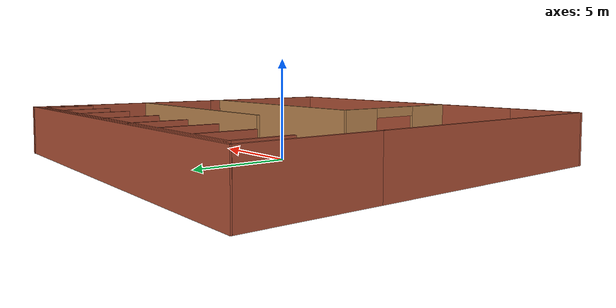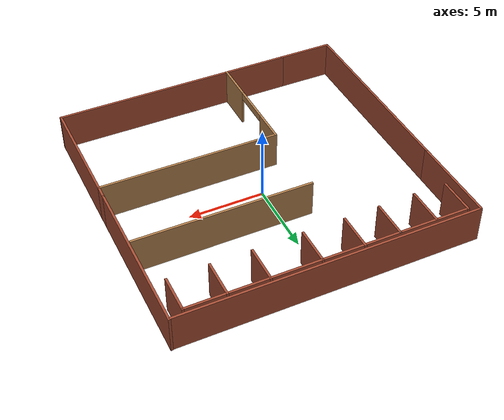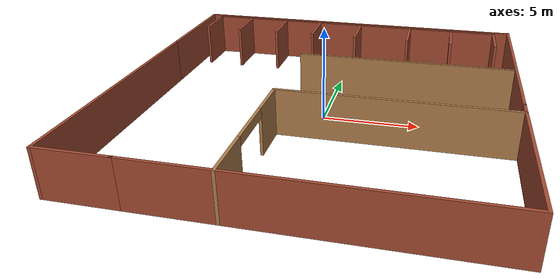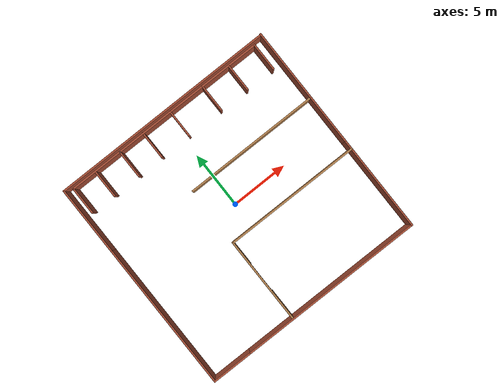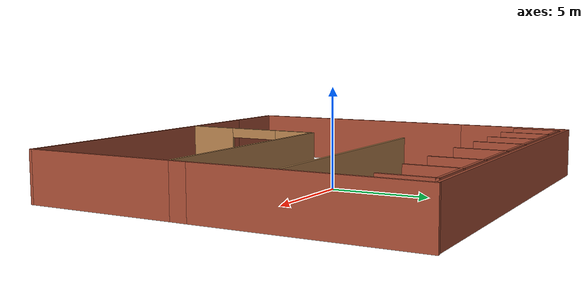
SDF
<?xml version='1.0'?>
<sdf version='1.7'>
  <model name='Docking_room'>
    <pose>-0.02 -0.365 0 0 -0 0</pose>
    <link name='Wall_12'>
      <collision name='Wall_12_Collision'>
        <geometry>
          <box>
            <size>6 0.15 2.5</size>
          </box>
        </geometry>
        <pose>0 0 1.25 0 -0 0</pose>
      </collision>
      <visual name='Wall_12_Visual'>
        <pose>0 0 1.25 0 -0 0</pose>
        <geometry>
          <box>
            <size>6 0.15 2.5</size>
          </box>
        </geometry>
        <material>
          <script>
            <uri>file://media/materials/scripts/gazebo.material</uri>
            <name>Gazebo/Bricks</name>
          </script>
          <ambient>1 1 1 1</ambient>
        </material>
        <meta>
          <layer>0</layer>
        </meta>
      </visual>
      <pose>-9.85 6.5 0 0 -0 1.5708</pose>
    </link>
    <link name='Wall_15'>
      <collision name='Wall_15_Collision'>
        <geometry>
          <box>
            <size>10.75 0.15 2.5</size>
          </box>
        </geometry>
        <pose>0 0 1.25 0 -0 0</pose>
      </collision>
      <visual name='Wall_15_Visual'>
        <pose>0 0 1.25 0 -0 0</pose>
        <geometry>
          <box>
            <size>10.75 0.15 2.5</size>
          </box>
        </geometry>
        <material>
          <script>
            <uri>file://media/materials/scripts/gazebo.material</uri>
            <name>Gazebo/Bricks</name>
          </script>
          <ambient>1 1 1 1</ambient>
        </material>
        <meta>
          <layer>0</layer>
        </meta>
      </visual>
      <pose>9.85 4.225 0 0 -0 -1.5708</pose>
    </link>
    <link name='Wall_17'>
      <collision name='Wall_17_Collision'>
        <geometry>
          <box>
            <size>18.25 0.15 2.5</size>
          </box>
        </geometry>
        <pose>0 0 1.25 0 -0 0</pose>
      </collision>
      <visual name='Wall_17_Visual'>
        <pose>0 0 1.25 0 -0 0</pose>
        <geometry>
          <box>
            <size>18.25 0.15 2.5</size>
          </box>
        </geometry>
        <material>
          <script>
            <uri>file://media/materials/scripts/gazebo.material</uri>
            <name>Gazebo/Bricks</name>
          </script>
          <ambient>1 1 1 1</ambient>
        </material>
        <meta>
          <layer>0</layer>
        </meta>
      </visual>
      <pose>-0.101246 9.17006 0 0 -0 0</pose>
    </link>
    <link name='Wall_19'>
      <collision name='Wall_19_Collision'>
        <geometry>
          <box>
            <size>2.5 0.15 2.5</size>
          </box>
        </geometry>
        <pose>0 0 1.25 0 -0 0</pose>
      </collision>
      <visual name='Wall_19_Visual'>
        <pose>0 0 1.25 0 -0 0</pose>
        <geometry>
          <box>
            <size>2.5 0.15 2.5</size>
          </box>
        </geometry>
        <material>
          <script>
            <uri>file://media/materials/scripts/gazebo.material</uri>
            <name>Gazebo/Bricks</name>
          </script>
          <ambient>1 1 1 1</ambient>
        </material>
        <meta>
          <layer>0</layer>
        </meta>
      </visual>
      <pose>-9.15125 7.99507 0 0 -0 -1.5708</pose>
    </link>
    <link name='Wall_21'>
      <collision name='Wall_21_Collision'>
        <geometry>
          <box>
            <size>2.5 0.15 2.5</size>
          </box>
        </geometry>
        <pose>0 0 1.25 0 -0 0</pose>
      </collision>
      <visual name='Wall_21_Visual'>
        <pose>0 0 1.25 0 -0 0</pose>
        <geometry>
          <box>
            <size>2.5 0.15 2.5</size>
          </box>
        </geometry>
        <material>
          <script>
            <uri>file://media/materials/scripts/gazebo.material</uri>
            <name>Gazebo/Bricks</name>
          </script>
          <ambient>1 1 1 1</ambient>
        </material>
        <meta>
          <layer>0</layer>
        </meta>
      </visual>
      <pose>-6.97003 7.94186 0 0 -0 -1.5708</pose>
    </link>
    <link name='Wall_23'>
      <collision name='Wall_23_Collision'>
        <geometry>
          <box>
            <size>0.16 0.15 2.5</size>
          </box>
        </geometry>
        <pose>0 0 1.25 0 -0 0</pose>
      </collision>
      <visual name='Wall_23_Visual'>
        <pose>0 0 1.25 0 -0 0</pose>
        <geometry>
          <box>
            <size>0.16 0.15 2.5</size>
          </box>
        </geometry>
        <material>
          <script>
            <uri>file://media/materials/scripts/gazebo.material</uri>
            <name>Gazebo/Grey</name>
          </script>
          <ambient>1 1 1 1</ambient>
        </material>
        <meta>
          <layer>0</layer>
        </meta>
      </visual>
      <pose>-4.51781 9.14347 0 0 -0 0</pose>
    </link>
    <link name='Wall_24'>
      <collision name='Wall_24_Collision'>
        <geometry>
          <box>
            <size>2.5 0.15 2.5</size>
          </box>
        </geometry>
        <pose>0 0 1.25 0 -0 0</pose>
      </collision>
      <visual name='Wall_24_Visual'>
        <pose>0 0 1.25 0 -0 0</pose>
        <geometry>
          <box>
            <size>2.5 0.15 2.5</size>
          </box>
        </geometry>
        <material>
          <script>
            <uri>file://media/materials/scripts/gazebo.material</uri>
            <name>Gazebo/Bricks</name>
          </script>
          <ambient>1 1 1 1</ambient>
        </material>
        <meta>
          <layer>0</layer>
        </meta>
      </visual>
      <pose>-4.51281 7.96847 0 0 -0 -1.5708</pose>
    </link>
    <link name='Wall_26'>
      <collision name='Wall_26_Collision'>
        <geometry>
          <box>
            <size>2.5 0.15 2.5</size>
          </box>
        </geometry>
        <pose>0 0 1.25 0 -0 0</pose>
      </collision>
      <visual name='Wall_26_Visual'>
        <pose>0 0 1.25 0 -0 0</pose>
        <geometry>
          <box>
            <size>2.5 0.15 2.5</size>
          </box>
        </geometry>
        <material>
          <script>
            <uri>file://media/materials/scripts/gazebo.material</uri>
            <name>Gazebo/Bricks</name>
          </script>
          <ambient>1 1 1 1</ambient>
        </material>
        <meta>
          <layer>0</layer>
        </meta>
      </visual>
      <pose>-2.18199 8.02167 0 0 -0 -1.5708</pose>
    </link>
    <link name='Wall_28'>
      <collision name='Wall_28_Collision'>
        <geometry>
          <box>
            <size>2.5 0.15 2.5</size>
          </box>
        </geometry>
        <pose>0 0 1.25 0 -0 0</pose>
      </collision>
      <visual name='Wall_28_Visual'>
        <pose>0 0 1.25 0 -0 0</pose>
        <geometry>
          <box>
            <size>2.5 0.15 2.5</size>
          </box>
        </geometry>
        <material>
          <script>
            <uri>file://media/materials/scripts/gazebo.material</uri>
            <name>Gazebo/Bricks</name>
          </script>
          <ambient>1 1 1 1</ambient>
        </material>
        <meta>
          <layer>0</layer>
        </meta>
      </visual>
      <pose>0.531226 7.99507 0 0 -0 -1.5708</pose>
    </link>
    <link name='Wall_3'>
      <collision name='Wall_3_Collision'>
        <geometry>
          <box>
            <size>1 0.15 2.5</size>
          </box>
        </geometry>
        <pose>0 0 1.25 0 -0 0</pose>
      </collision>
      <visual name='Wall_3_Visual'>
        <pose>0 0 1.25 0 -0 0</pose>
        <geometry>
          <box>
            <size>1 0.15 2.5</size>
          </box>
        </geometry>
        <material>
          <script>
            <uri>file://media/materials/scripts/gazebo.material</uri>
            <name>Gazebo/Bricks</name>
          </script>
          <ambient>1 1 1 1</ambient>
        </material>
        <meta>
          <layer>0</layer>
        </meta>
      </visual>
      <pose>9.85 -1.5 0 0 -0 1.5708</pose>
    </link>
    <link name='Wall_30'>
      <collision name='Wall_30_Collision'>
        <geometry>
          <box>
            <size>2.5 0.15 2.5</size>
          </box>
        </geometry>
        <pose>0 0 1.25 0 -0 0</pose>
      </collision>
      <visual name='Wall_30_Visual'>
        <pose>0 0 1.25 0 -0 0</pose>
        <geometry>
          <box>
            <size>2.5 0.15 2.5</size>
          </box>
        </geometry>
        <material>
          <script>
            <uri>file://media/materials/scripts/gazebo.material</uri>
            <name>Gazebo/Bricks</name>
          </script>
          <ambient>1 1 1 1</ambient>
        </material>
        <meta>
          <layer>0</layer>
        </meta>
      </visual>
      <pose>3.74985 8.02167 0 0 -0 -1.5708</pose>
    </link>
    <link name='Wall_32'>
      <collision name='Wall_32_Collision'>
        <geometry>
          <box>
            <size>2.5 0.15 2.5</size>
          </box>
        </geometry>
        <pose>0 0 1.25 0 -0 0</pose>
      </collision>
      <visual name='Wall_32_Visual'>
        <pose>0 0 1.25 0 -0 0</pose>
        <geometry>
          <box>
            <size>2.5 0.15 2.5</size>
          </box>
        </geometry>
        <material>
          <script>
            <uri>file://media/materials/scripts/gazebo.material</uri>
            <name>Gazebo/Bricks</name>
          </script>
          <ambient>1 1 1 1</ambient>
        </material>
        <meta>
          <layer>0</layer>
        </meta>
      </visual>
      <pose>6.35667 7.99507 0 0 -0 -1.5708</pose>
    </link>
    <link name='Wall_34'>
      <collision name='Wall_34_Collision'>
        <geometry>
          <box>
            <size>2.5 0.15 2.5</size>
          </box>
        </geometry>
        <pose>0 0 1.25 0 -0 0</pose>
      </collision>
      <visual name='Wall_34_Visual'>
        <pose>0 0 1.25 0 -0 0</pose>
        <geometry>
          <box>
            <size>2.5 0.15 2.5</size>
          </box>
        </geometry>
        <material>
          <script>
            <uri>file://media/materials/scripts/gazebo.material</uri>
            <name>Gazebo/Bricks</name>
          </script>
          <ambient>1 1 1 1</ambient>
        </material>
        <meta>
          <layer>0</layer>
        </meta>
      </visual>
      <pose>8.94875 7.99507 0 0 -0 -1.5708</pose>
    </link>
    <link name='Wall_36'>
      <collision name='Wall_36_Collision'>
        <geometry>
          <box>
            <size>11.75 0.15 2.5</size>
          </box>
        </geometry>
        <pose>0 0 1.25 0 -0 0</pose>
      </collision>
      <visual name='Wall_36_Visual'>
        <pose>0 0 1.25 0 -0 0</pose>
        <geometry>
          <box>
            <size>11.75 0.15 2.5</size>
          </box>
        </geometry>
        <material>
          <script>
            <uri>file://media/materials/scripts/gazebo.material</uri>
            <name>Gazebo/Wood</name>
          </script>
          <ambient>1 1 1 1</ambient>
        </material>
        <meta>
          <layer>0</layer>
        </meta>
      </visual>
      <pose>3.8817 3.21162 0 0 -0 3.14159</pose>
    </link>
    <link name='Wall_38'>
      <collision name='Wall_38_Collision'>
        <geometry>
          <box>
            <size>12 0.15 2.5</size>
          </box>
        </geometry>
        <pose>0 0 1.25 0 -0 0</pose>
      </collision>
      <visual name='Wall_38_Visual'>
        <pose>0 0 1.25 0 -0 0</pose>
        <geometry>
          <box>
            <size>12 0.15 2.5</size>
          </box>
        </geometry>
        <material>
          <script>
            <uri>file://media/materials/scripts/gazebo.material</uri>
            <name>Gazebo/Wood</name>
          </script>
          <ambient>1 1 1 1</ambient>
        </material>
        <meta>
          <layer>0</layer>
        </meta>
      </visual>
      <pose>3.925 -1.925 0 0 -0 3.14159</pose>
    </link>
    <link name='Wall_40'>
      <pose>-2 -5.725 0 0 -0 -1.5708</pose>
      <visual name='Wall_40_Visual_0'>
        <pose>-2.72723 0 1.25 0 -0 0</pose>
        <geometry>
          <box>
            <size>2.29554 0.15 2.5</size>
          </box>
        </geometry>
        <material>
          <script>
            <uri>file://media/materials/scripts/gazebo.material</uri>
            <name>Gazebo/Wood</name>
          </script>
          <ambient>1 1 1 1</ambient>
        </material>
        <meta>
          <layer>0</layer>
        </meta>
      </visual>
      <collision name='Wall_40_Collision_0'>
        <geometry>
          <box>
            <size>2.29554 0.15 2.5</size>
          </box>
        </geometry>
        <pose>-2.72723 0 1.25 0 -0 0</pose>
      </collision>
      <visual name='Wall_40_Visual_1'>
        <pose>2.51548 0 1.25 0 -0 0</pose>
        <geometry>
          <box>
            <size>2.71905 0.15 2.5</size>
          </box>
        </geometry>
        <material>
          <script>
            <uri>file://media/materials/scripts/gazebo.material</uri>
            <name>Gazebo/Wood</name>
          </script>
          <ambient>1 1 1 1</ambient>
        </material>
        <meta>
          <layer>0</layer>
        </meta>
      </visual>
      <collision name='Wall_40_Collision_1'>
        <geometry>
          <box>
            <size>2.71905 0.15 2.5</size>
          </box>
        </geometry>
        <pose>2.51548 0 1.25 0 -0 0</pose>
      </collision>
      <visual name='Wall_40_Visual_2'>
        <pose>-0.211755 0 2.25 0 -0 0</pose>
        <geometry>
          <box>
            <size>2.73541 0.15 0.5</size>
          </box>
        </geometry>
        <material>
          <script>
            <uri>file://media/materials/scripts/gazebo.material</uri>
            <name>Gazebo/Wood</name>
          </script>
          <ambient>1 1 1 1</ambient>
        </material>
        <meta>
          <layer>0</layer>
        </meta>
      </visual>
      <collision name='Wall_40_Collision_2'>
        <geometry>
          <box>
            <size>2.73541 0.15 0.5</size>
          </box>
        </geometry>
        <pose>-0.211755 0 2.25 0 -0 0</pose>
      </collision>
    </link>
    <link name='Wall_42'>
      <collision name='Wall_42_Collision'>
        <geometry>
          <box>
            <size>19.75 0.15 2.5</size>
          </box>
        </geometry>
        <pose>0 0 1.25 0 -0 0</pose>
      </collision>
      <visual name='Wall_42_Visual'>
        <pose>0 0 1.25 0 -0 0</pose>
        <geometry>
          <box>
            <size>19.75 0.15 2.5</size>
          </box>
        </geometry>
        <material>
          <script>
            <uri>file://media/materials/scripts/gazebo.material</uri>
            <name>Gazebo/Bricks</name>
          </script>
          <ambient>1 1 1 1</ambient>
        </material>
        <meta>
          <layer>0</layer>
        </meta>
      </visual>
      <pose>-0.042851 9.48927 0 0 -0 0</pose>
    </link>
    <link name='Wall_5'>
      <collision name='Wall_5_Collision'>
        <geometry>
          <box>
            <size>7.75 0.15 2.5</size>
          </box>
        </geometry>
        <pose>0 0 1.25 0 -0 0</pose>
      </collision>
      <visual name='Wall_5_Visual'>
        <pose>0 0 1.25 0 -0 0</pose>
        <geometry>
          <box>
            <size>7.75 0.15 2.5</size>
          </box>
        </geometry>
        <material>
          <script>
            <uri>file://media/materials/scripts/gazebo.material</uri>
            <name>Gazebo/Bricks</name>
          </script>
          <ambient>1 1 1 1</ambient>
        </material>
        <meta>
          <layer>0</layer>
        </meta>
      </visual>
      <pose>9.85 -5.725 0 0 -0 -1.5708</pose>
    </link>
    <link name='Wall_6'>
      <collision name='Wall_6_Collision'>
        <geometry>
          <box>
            <size>16.25 0.15 2.5</size>
          </box>
        </geometry>
        <pose>0 0 1.25 0 -0 0</pose>
      </collision>
      <visual name='Wall_6_Visual'>
        <pose>0 0 1.25 0 -0 0</pose>
        <geometry>
          <box>
            <size>16.25 0.15 2.5</size>
          </box>
        </geometry>
        <material>
          <script>
            <uri>file://media/materials/scripts/gazebo.material</uri>
            <name>Gazebo/Bricks</name>
          </script>
          <ambient>1 1 1 1</ambient>
        </material>
        <meta>
          <layer>0</layer>
        </meta>
      </visual>
      <pose>1.8 -9.525 0 0 -0 3.14159</pose>
    </link>
    <link name='Wall_8'>
      <collision name='Wall_8_Collision'>
        <geometry>
          <box>
            <size>3.75 0.15 2.5</size>
          </box>
        </geometry>
        <pose>0 0 1.25 0 -0 0</pose>
      </collision>
      <visual name='Wall_8_Visual'>
        <pose>0 0 1.25 0 -0 0</pose>
        <geometry>
          <box>
            <size>3.75 0.15 2.5</size>
          </box>
        </geometry>
        <material>
          <script>
            <uri>file://media/materials/scripts/gazebo.material</uri>
            <name>Gazebo/Bricks</name>
          </script>
          <ambient>1 1 1 1</ambient>
        </material>
        <meta>
          <layer>0</layer>
        </meta>
      </visual>
      <pose>-8.05 -9.525 0 0 -0 3.14159</pose>
    </link>
    <link name='Wall_9'>
      <collision name='Wall_9_Collision'>
        <geometry>
          <box>
            <size>13.25 0.15 2.5</size>
          </box>
        </geometry>
        <pose>0 0 1.25 0 -0 0</pose>
      </collision>
      <visual name='Wall_9_Visual'>
        <pose>0 0 1.25 0 -0 0</pose>
        <geometry>
          <box>
            <size>13.25 0.15 2.5</size>
          </box>
        </geometry>
        <material>
          <script>
            <uri>file://media/materials/scripts/gazebo.material</uri>
            <name>Gazebo/Bricks</name>
          </script>
          <ambient>1 1 1 1</ambient>
        </material>
        <meta>
          <layer>0</layer>
        </meta>
      </visual>
      <pose>-9.85 -2.975 0 0 -0 1.5708</pose>
    </link>
    <static>1</static>
  </model>
</sdf>
